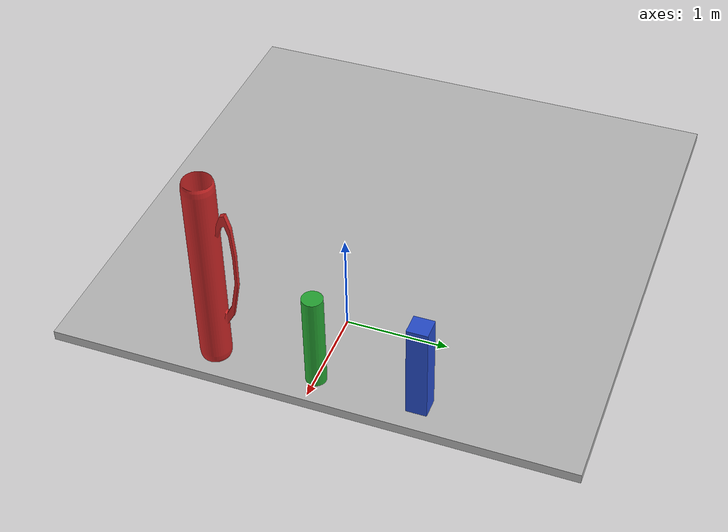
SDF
<?xml version="1.0"?>

<sdf version="1.5">
  <world name="camera_world">

  <physics type="ode">
    <gravity>0 0 -9.8</gravity>
    <ode>
      <solver>
        <type>quick</type>
        <iters>3</iters>
        <sor>1.3</sor>
      </solver>
      <constraints>
        <cfm>0.0000000001</cfm>
        <erp>0.2</erp>
        <contact_max_correcting_vel>100.0</contact_max_correcting_vel>
        <contact_surface_layer>0.001</contact_surface_layer>
      </constraints>
    </ode>
  </physics>

  <gui>
  </gui>

  <scene>
    <ambient>1.0 1.0 1.0 1.0</ambient>
    <grid>false</grid>
  </scene>

  <model name="gplane">
    <pose>0 0 0 0 0 0</pose>
    <static>true</static>

    <link name="plane">
      <pose>-1.5 0 -0.05 0 0 0</pose>
      <collision name="plane_collision">
        <surface>
          <contact>
            <ode>
              <kp>1000000.0</kp>
              <kd>1.0</kd>
            </ode>
          </contact>
        </surface>
        <geometry>
          <box>
            <size>5.13 5.13 0.1</size>
          </box>
        </geometry>
      </collision>
      <visual name="plane_visual">
        <geometry>
          <box>
            <size>5.13 5.13 0.1</size>
          </box>
        </geometry>
        <material>
          <script>
            <uri>file://media/materials/scripts/gazebo.material</uri>
            <name>Gazebo/Rocky</name>
          </script>
        </material>
      </visual>
    </link>
  </model>

  <!-- The small cuboidal "cup" -->
  <model name="box1_model">
    <pose>   0.78   1.0    0.5   0.0    0.0    0.0</pose>
    <static>true</static>
    <link name="box1_body">
      <collision name="box1_geom_collision">
        <geometry>
          <box>
            <size>0.2 0.2 1.0</size>
          </box>
        </geometry>
      </collision>
      <visual name="box1_geom_visual">
        <geometry>
          <box>
            <size>0.2 0.2 1.0</size>
          </box>
        </geometry>
        <material>
          <script>
            <uri>file://media/materials/scripts/gazebo.material</uri>
            <name>Gazebo/Blue</name>
          </script>
        </material>
      </visual>
    </link>
  </model>

  <!-- The small cylindrical "cup" -->
  <model name="cylinder1_model">
    <pose>   0.78   0.0    0.5   0.0    0.0    0.0</pose>
    <static>true</static>
    <link name="cylinder1_body">
      <collision name="cylinder1_geom_collision">
        <geometry>
          <cylinder>
            <radius>0.1</radius>
            <length>1.0</length>
          </cylinder>
        </geometry>
      </collision>
      <visual name="cylinder1_geom_visual">
        <geometry>
          <cylinder>
            <radius>0.1</radius>
            <length>1.0</length>
          </cylinder>
        </geometry>
        <material>
          <script>
            <uri>file://media/materials/scripts/gazebo.material</uri>
            <name>Gazebo/Green</name>
          </script>
        </material>
      </visual>
    </link>
  </model>

  <!-- The trimesh cup -->
  <model name="cup1_model">
    <pose> 0.78  -1.0    0.0 1.5708   0.0    1.5708</pose>
    <static>true</static>
    <link name="cup1_body">
      <collision name="cup1_geom_collision">
        <surface>
          <contact>
            <ode>
              <kp>1000000000.0</kp>
              <kd>1.0</kd>
            </ode>
          </contact>
        </surface>
        <geometry>
          <mesh>
            <scale>0.2 1.0 0.2</scale>
            <uri>model://Media/models/cup.stl</uri>
          </mesh>
        </geometry>
      </collision>
      <visual name="cup1_geom_collision">
        <geometry>
          <mesh>
            <scale>0.2 1.0 0.2</scale>
            <uri>model://Media/models/cup.stl</uri>
          </mesh>
        </geometry>
        <material>
          <script>
            <uri>file://media/materials/scripts/gazebo.material</uri>
            <name>Gazebo/Red</name>
          </script>
        </material>
      </visual>
    </link>
  </model>

  <!-- White Directional light -->

  </world>
</sdf>
